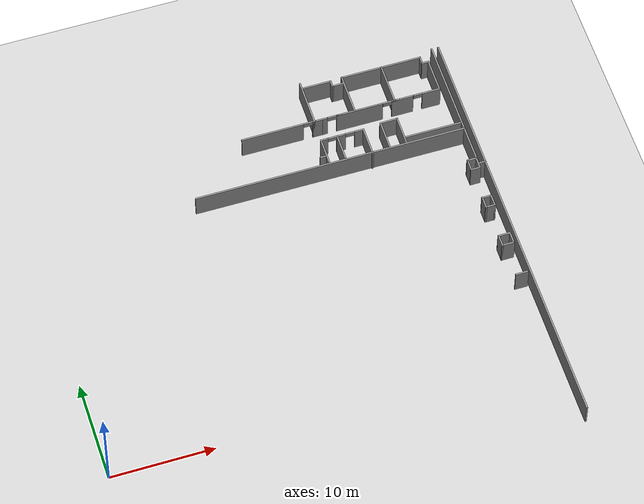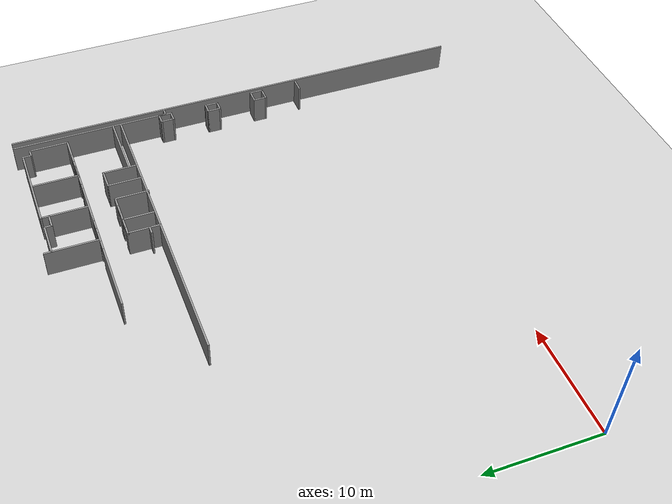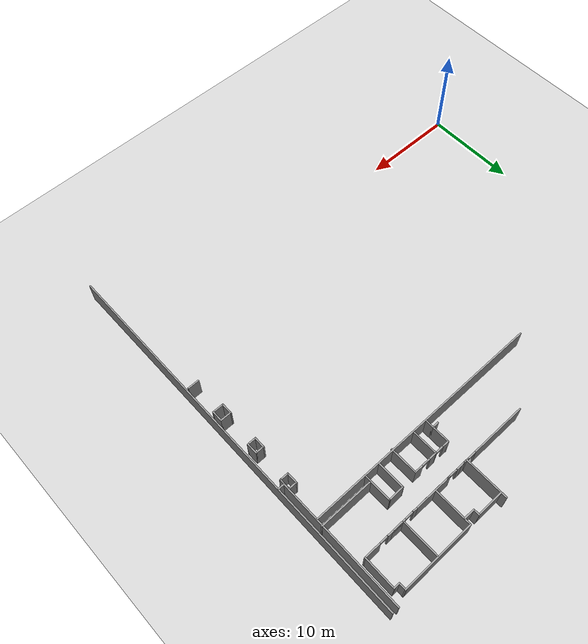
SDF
<sdf version="1.6">
 <world name="default">
  <model name="ground_plane">
   <static>1</static>
   <link name="link">
    <collision name="collision">
     <geometry><plane><normal>0 0 1</normal><size>100 100</size></plane></geometry>
     <surface>
      <contact><collide_bitmask>65535</collide_bitmask></contact>
      <friction><ode><mu>100</mu><mu2>50</mu2></ode></friction>
     </surface>
    </collision>
    <visual name="visual">
     <cast_shadows>0</cast_shadows>
     <geometry><plane><normal>0 0 1</normal><size>100 100</size></plane></geometry>
     <material>
      <script><uri>file://media/materials/scripts/gazebo.material</uri><name>Gazebo/Grey</name></script>
     </material>
    </visual>
   </link>
  </model>
  <model name="Tsudanuma_2-3-with_door">
   <pose>11.7222 12.8329 0 0 -0 0</pose>
   <link name="Wall_11">
    <collision name="Wall_11_Collision">
     <geometry><box><size>42 0.15 2.5</size></box></geometry>
     <pose>0 0 1.25 0 -0 0</pose>
    </collision>
    <visual name="Wall_11_Visual">
     <pose>0 0 1.25 0 -0 0</pose>
     <geometry><box><size>42 0.15 2.5</size></box></geometry>
     <material>
      <script><uri>file://media/materials/scripts/gazebo.material</uri><name>Gazebo/Grey</name></script>
      <ambient>1 1 1 1</ambient>
     </material>
     <meta><layer>0</layer></meta>
    </visual>
    <pose>30.8779 0.735038 0 0 -0 1.5708</pose>
   </link>
   <link name="Wall_241">
    <collision name="Wall_241_Collision">
     <geometry><box><size>0.75 0.15 2.5</size></box></geometry>
     <pose>0 0 1.25 0 -0 0</pose>
    </collision>
    <visual name="Wall_241_Visual">
     <pose>0 0 1.25 0 -0 0</pose>
     <geometry><box><size>0.75 0.15 2.5</size></box></geometry>
     <material>
      <script><uri>file://media/materials/scripts/gazebo.material</uri><name>Gazebo/Grey</name></script>
      <ambient>1 1 1 1</ambient>
     </material>
     <meta><layer>0</layer></meta>
    </visual>
    <pose>16.5881 12.9209 0 0 -0 0</pose>
   </link>
   <link name="Wall_242">
    <collision name="Wall_242_Collision">
     <geometry><box><size>2 0.15 2.5</size></box></geometry>
     <pose>0 0 1.25 0 -0 0</pose>
    </collision>
    <visual name="Wall_242_Visual">
     <pose>0 0 1.25 0 -0 0</pose>
     <geometry><box><size>2 0.15 2.5</size></box></geometry>
     <material>
      <script><uri>file://media/materials/scripts/gazebo.material</uri><name>Gazebo/Grey</name></script>
      <ambient>1 1 1 1</ambient>
     </material>
     <meta><layer>0</layer></meta>
    </visual>
    <pose>16.8881 13.8459 0 0 -0 1.5708</pose>
   </link>
   <link name="Wall_243">
    <pose>17.6881 14.7709 0 0 -0 0</pose>
    <visual name="Wall_243_Visual_0">
     <pose>-0.487249 0 1.25 0 -0 0</pose>
     <geometry><box><size>0.775502 0.15 2.5</size></box></geometry>
     <material>
      <script><uri>file://media/materials/scripts/gazebo.material</uri><name>Gazebo/Grey</name></script>
      <ambient>1 1 1 1</ambient>
     </material>
     <meta><layer>0</layer></meta>
    </visual>
    <collision name="Wall_243_Collision_0">
     <geometry><box><size>0.775502 0.15 2.5</size></box></geometry>
     <pose>-0.487249 0 1.25 0 -0 0</pose>
    </collision>
    <visual name="Wall_243_Visual_1">
     <pose>0.837751 0 1.25 0 -0 0</pose>
     <geometry><box><size>0.074498 0.15 2.5</size></box></geometry>
     <material>
      <script><uri>file://media/materials/scripts/gazebo.material</uri><name>Gazebo/Grey</name></script>
      <ambient>1 1 1 1</ambient>
     </material>
     <meta><layer>0</layer></meta>
    </visual>
    <collision name="Wall_243_Collision_1">
     <geometry><box><size>0.074498 0.15 2.5</size></box></geometry>
     <pose>0.837751 0 1.25 0 -0 0</pose>
    </collision>
    <visual name="Wall_243_Visual_2">
     <pose>0.350502 0 2.25 0 -0 0</pose>
     <geometry><box><size>0.9 0.15 0.5</size></box></geometry>
     <material>
      <script><uri>file://media/materials/scripts/gazebo.material</uri><name>Gazebo/Grey</name></script>
      <ambient>1 1 1 1</ambient>
     </material>
     <meta><layer>0</layer></meta>
    </visual>
    <collision name="Wall_243_Collision_2">
     <geometry><box><size>0.9 0.15 0.5</size></box></geometry>
     <pose>0.350502 0 2.25 0 -0 0</pose>
    </collision>
   </link>
   <link name="Wall_244">
    <collision name="Wall_244_Collision">
     <geometry><box><size>2.75 0.15 2.5</size></box></geometry>
     <pose>0 0 1.25 0 -0 0</pose>
    </collision>
    <visual name="Wall_244_Visual">
     <pose>0 0 1.25 0 -0 0</pose>
     <geometry><box><size>2.75 0.15 2.5</size></box></geometry>
     <material>
      <script><uri>file://media/materials/scripts/gazebo.material</uri><name>Gazebo/Grey</name></script>
      <ambient>1 1 1 1</ambient>
     </material>
     <meta><layer>0</layer></meta>
    </visual>
    <pose>18.4881 13.4709 0 0 -0 -1.5708</pose>
   </link>
   <link name="Wall_246">
    <collision name="Wall_246_Collision">
     <geometry><box><size>1 0.15 2.5</size></box></geometry>
     <pose>0 0 1.25 0 -0 0</pose>
    </collision>
    <visual name="Wall_246_Visual">
     <pose>0 0 1.25 0 -0 0</pose>
     <geometry><box><size>1 0.15 2.5</size></box></geometry>
     <material>
      <script><uri>file://media/materials/scripts/gazebo.material</uri><name>Gazebo/Grey</name></script>
      <ambient>1 1 1 1</ambient>
     </material>
     <meta><layer>0</layer></meta>
    </visual>
    <pose>16.8881 12.4959 0 0 -0 -1.5708</pose>
   </link>
   <link name="Wall_248">
    <pose>19.7881 14.7709 0 0 -0 0</pose>
    <visual name="Wall_248_Visual_0">
     <pose>-0.931607 0 1.25 0 -0 0</pose>
     <geometry><box><size>0.886786 0.15 2.5</size></box></geometry>
     <material>
      <script><uri>file://media/materials/scripts/gazebo.material</uri><name>Gazebo/Grey</name></script>
      <ambient>1 1 1 1</ambient>
     </material>
     <meta><layer>0</layer></meta>
    </visual>
    <collision name="Wall_248_Collision_0">
     <geometry><box><size>0.886786 0.15 2.5</size></box></geometry>
     <pose>-0.931607 0 1.25 0 -0 0</pose>
    </collision>
    <visual name="Wall_248_Visual_1">
     <pose>0.893393 0 1.25 0 -0 0</pose>
     <geometry><box><size>0.963214 0.15 2.5</size></box></geometry>
     <material>
      <script><uri>file://media/materials/scripts/gazebo.material</uri><name>Gazebo/Grey</name></script>
      <ambient>1 1 1 1</ambient>
     </material>
     <meta><layer>0</layer></meta>
    </visual>
    <collision name="Wall_248_Collision_1">
     <geometry><box><size>0.963214 0.15 2.5</size></box></geometry>
     <pose>0.893393 0 1.25 0 -0 0</pose>
    </collision>
    <visual name="Wall_248_Visual_2">
     <pose>-0.038214 0 2.25 0 -0 0</pose>
     <geometry><box><size>0.9 0.15 0.5</size></box></geometry>
     <material>
      <script><uri>file://media/materials/scripts/gazebo.material</uri><name>Gazebo/Grey</name></script>
      <ambient>1 1 1 1</ambient>
     </material>
     <meta><layer>0</layer></meta>
    </visual>
    <collision name="Wall_248_Collision_2">
     <geometry><box><size>0.9 0.15 0.5</size></box></geometry>
     <pose>-0.038214 0 2.25 0 -0 0</pose>
    </collision>
   </link>
   <link name="Wall_249">
    <collision name="Wall_249_Collision">
     <geometry><box><size>3 0.15 2.5</size></box></geometry>
     <pose>0 0 1.25 0 -0 0</pose>
    </collision>
    <visual name="Wall_249_Visual">
     <pose>0 0 1.25 0 -0 0</pose>
     <geometry><box><size>3 0.15 2.5</size></box></geometry>
     <material>
      <script><uri>file://media/materials/scripts/gazebo.material</uri><name>Gazebo/Grey</name></script>
      <ambient>1 1 1 1</ambient>
     </material>
     <meta><layer>0</layer></meta>
    </visual>
    <pose>21.0881 13.3459 0 0 -0 -1.5708</pose>
   </link>
   <link name="Wall_251">
    <collision name="Wall_251_Collision">
     <geometry><box><size>3 0.15 2.5</size></box></geometry>
     <pose>0 0 1.25 0 -0 0</pose>
    </collision>
    <visual name="Wall_251_Visual">
     <pose>0 0 1.25 0 -0 0</pose>
     <geometry><box><size>3 0.15 2.5</size></box></geometry>
     <material>
      <script><uri>file://media/materials/scripts/gazebo.material</uri><name>Gazebo/Grey</name></script>
      <ambient>1 1 1 1</ambient>
     </material>
     <meta><layer>0</layer></meta>
    </visual>
    <pose>22.8519 13.5353 0 0 -0 1.5708</pose>
   </link>
   <link name="Wall_252">
    <collision name="Wall_252_Collision">
     <geometry><box><size>1.78264 0.15 2.5</size></box></geometry>
     <pose>0 0 1.25 0 -0 0</pose>
    </collision>
    <visual name="Wall_252_Visual">
     <pose>0 0 1.25 0 -0 0</pose>
     <geometry><box><size>1.78264 0.15 2.5</size></box></geometry>
     <material>
      <script><uri>file://media/materials/scripts/gazebo.material</uri><name>Gazebo/Grey</name></script>
      <ambient>1 1 1 1</ambient>
     </material>
     <meta><layer>0</layer></meta>
    </visual>
    <pose>23.6682 14.9702 0 0 -0 0.01211</pose>
   </link>
   <link name="Wall_253">
    <collision name="Wall_253_Collision">
     <geometry><box><size>3 0.15 2.5</size></box></geometry>
     <pose>0 0 1.25 0 -0 0</pose>
    </collision>
    <visual name="Wall_253_Visual">
     <pose>0 0 1.25 0 -0 0</pose>
     <geometry><box><size>3 0.15 2.5</size></box></geometry>
     <material>
      <script><uri>file://media/materials/scripts/gazebo.material</uri><name>Gazebo/Grey</name></script>
      <ambient>1 1 1 1</ambient>
     </material>
     <meta><layer>0</layer></meta>
    </visual>
    <pose>24.5042 13.555 0 0 -0 -1.5708</pose>
   </link>
   <link name="Wall_256">
    <collision name="Wall_256_Collision">
     <geometry><box><size>5.75 0.15 2.5</size></box></geometry>
     <pose>0 0 1.25 0 -0 0</pose>
    </collision>
    <visual name="Wall_256_Visual">
     <pose>0 0 1.25 0 -0 0</pose>
     <geometry><box><size>5.75 0.15 2.5</size></box></geometry>
     <material>
      <script><uri>file://media/materials/scripts/gazebo.material</uri><name>Gazebo/Grey</name></script>
      <ambient>1 1 1 1</ambient>
     </material>
     <meta><layer>0</layer></meta>
    </visual>
    <pose>27.455 12.7232 0 0 -0 3.14159</pose>
   </link>
   <link name="Wall_258">
    <collision name="Wall_258_Collision">
     <geometry><box><size>14 0.15 2.5</size></box></geometry>
     <pose>0 0 1.25 0 -0 0</pose>
    </collision>
    <visual name="Wall_258_Visual">
     <pose>0 0 1.25 0 -0 0</pose>
     <geometry><box><size>14 0.15 2.5</size></box></geometry>
     <material>
      <script><uri>file://media/materials/scripts/gazebo.material</uri><name>Gazebo/Grey</name></script>
      <ambient>1 1 1 1</ambient>
     </material>
     <meta><layer>0</layer></meta>
    </visual>
    <pose>30.2131 14.7469 0 0 -0 -1.5708</pose>
   </link>
   <link name="Wall_260">
    <collision name="Wall_260_Collision">
     <geometry><box><size>0.75 0.15 2.5</size></box></geometry>
     <pose>0 0 1.25 0 -0 0</pose>
    </collision>
    <visual name="Wall_260_Visual">
     <pose>0 0 1.25 0 -0 0</pose>
     <geometry><box><size>0.75 0.15 2.5</size></box></geometry>
     <material>
      <script><uri>file://media/materials/scripts/gazebo.material</uri><name>Gazebo/Grey</name></script>
      <ambient>1 1 1 1</ambient>
     </material>
     <meta><layer>0</layer></meta>
    </visual>
    <pose>30.5131 7.82186 0 0 -0 0</pose>
   </link>
   <link name="Wall_262">
    <collision name="Wall_262_Collision">
     <geometry><box><size>3.5 0.15 2.5</size></box></geometry>
     <pose>0 0 1.25 0 -0 0</pose>
    </collision>
    <visual name="Wall_262_Visual">
     <pose>0 0 1.25 0 -0 0</pose>
     <geometry><box><size>3.5 0.15 2.5</size></box></geometry>
     <material>
      <script><uri>file://media/materials/scripts/gazebo.material</uri><name>Gazebo/Grey</name></script>
      <ambient>1 1 1 1</ambient>
     </material>
     <meta><layer>0</layer></meta>
    </visual>
    <pose>29.4356 18.7263 0 0 -0 -1.5708</pose>
   </link>
   <link name="Wall_263">
    <pose>19.6356 17.0513 0 0 -0 3.14159</pose>
    <visual name="Wall_263_Visual_0">
     <pose>-8.96632 0 1.25 0 -0 0</pose>
     <geometry><box><size>1.81737 0.15 2.5</size></box></geometry>
     <material>
      <script><uri>file://media/materials/scripts/gazebo.material</uri><name>Gazebo/Grey</name></script>
      <ambient>1 1 1 1</ambient>
     </material>
     <meta><layer>0</layer></meta>
    </visual>
    <collision name="Wall_263_Collision_0">
     <geometry><box><size>1.81737 0.15 2.5</size></box></geometry>
     <pose>-8.96632 0 1.25 0 -0 0</pose>
    </collision>
    <visual name="Wall_263_Visual_1">
     <pose>-6.08433 0 1.25 0 -0 0</pose>
     <geometry><box><size>2.14661 0.15 2.5</size></box></geometry>
     <material>
      <script><uri>file://media/materials/scripts/gazebo.material</uri><name>Gazebo/Grey</name></script>
      <ambient>1 1 1 1</ambient>
     </material>
     <meta><layer>0</layer></meta>
    </visual>
    <collision name="Wall_263_Collision_1">
     <geometry><box><size>2.14661 0.15 2.5</size></box></geometry>
     <pose>-6.08433 0 1.25 0 -0 0</pose>
    </collision>
    <visual name="Wall_263_Visual_2">
     <pose>-5.82829 0 1.25 0 -0 0</pose>
     <geometry><box><size>1.63452 0.15 2.5</size></box></geometry>
     <material>
      <script><uri>file://media/materials/scripts/gazebo.material</uri><name>Gazebo/Grey</name></script>
      <ambient>1 1 1 1</ambient>
     </material>
     <meta><layer>0</layer></meta>
    </visual>
    <collision name="Wall_263_Collision_2">
     <geometry><box><size>1.63452 0.15 2.5</size></box></geometry>
     <pose>-5.82829 0 1.25 0 -0 0</pose>
    </collision>
    <visual name="Wall_263_Visual_3">
     <pose>-1.80612 0 1.25 0 -0 0</pose>
     <geometry><box><size>4.60982 0.15 2.5</size></box></geometry>
     <material>
      <script><uri>file://media/materials/scripts/gazebo.material</uri><name>Gazebo/Grey</name></script>
      <ambient>1 1 1 1</ambient>
     </material>
     <meta><layer>0</layer></meta>
    </visual>
    <collision name="Wall_263_Collision_3">
     <geometry><box><size>4.60982 0.15 2.5</size></box></geometry>
     <pose>-1.80612 0 1.25 0 -0 0</pose>
    </collision>
    <visual name="Wall_263_Visual_4">
     <pose>-1.56952 0 1.25 0 -0 0</pose>
     <geometry><box><size>4.13662 0.15 2.5</size></box></geometry>
     <material>
      <script><uri>file://media/materials/scripts/gazebo.material</uri><name>Gazebo/Grey</name></script>
      <ambient>1 1 1 1</ambient>
     </material>
     <meta><layer>0</layer></meta>
    </visual>
    <collision name="Wall_263_Collision_4">
     <geometry><box><size>4.13662 0.15 2.5</size></box></geometry>
     <pose>-1.56952 0 1.25 0 -0 0</pose>
    </collision>
    <visual name="Wall_263_Visual_5">
     <pose>2.1415 0 1.25 0 -0 0</pose>
     <geometry><box><size>1.48543 0.15 2.5</size></box></geometry>
     <material>
      <script><uri>file://media/materials/scripts/gazebo.material</uri><name>Gazebo/Grey</name></script>
      <ambient>1 1 1 1</ambient>
     </material>
     <meta><layer>0</layer></meta>
    </visual>
    <collision name="Wall_263_Collision_5">
     <geometry><box><size>1.48543 0.15 2.5</size></box></geometry>
     <pose>2.1415 0 1.25 0 -0 0</pose>
    </collision>
    <visual name="Wall_263_Visual_6">
     <pose>2.39107 0 1.25 0 -0 0</pose>
     <geometry><box><size>0.986302 0.15 2.5</size></box></geometry>
     <material>
      <script><uri>file://media/materials/scripts/gazebo.material</uri><name>Gazebo/Grey</name></script>
      <ambient>1 1 1 1</ambient>
     </material>
     <meta><layer>0</layer></meta>
    </visual>
    <collision name="Wall_263_Collision_6">
     <geometry><box><size>0.986302 0.15 2.5</size></box></geometry>
     <pose>2.39107 0 1.25 0 -0 0</pose>
    </collision>
    <visual name="Wall_263_Visual_7">
     <pose>6.82961 0 1.25 0 -0 0</pose>
     <geometry><box><size>6.09078 0.15 2.5</size></box></geometry>
     <material>
      <script><uri>file://media/materials/scripts/gazebo.material</uri><name>Gazebo/Grey</name></script>
      <ambient>1 1 1 1</ambient>
     </material>
     <meta><layer>0</layer></meta>
    </visual>
    <collision name="Wall_263_Collision_7">
     <geometry><box><size>6.09078 0.15 2.5</size></box></geometry>
     <pose>6.82961 0 1.25 0 -0 0</pose>
    </collision>
    <visual name="Wall_263_Visual_8">
     <pose>-7.62009 0 2.25 0 -0 0</pose>
     <geometry><box><size>0.87509 0.15 0.5</size></box></geometry>
     <material>
      <script><uri>file://media/materials/scripts/gazebo.material</uri><name>Gazebo/Grey</name></script>
      <ambient>1 1 1 1</ambient>
     </material>
     <meta><layer>0</layer></meta>
    </visual>
    <collision name="Wall_263_Collision_8">
     <geometry><box><size>0.87509 0.15 0.5</size></box></geometry>
     <pose>-7.62009 0 2.25 0 -0 0</pose>
    </collision>
    <visual name="Wall_263_Visual_9">
     <pose>-4.567 0 2.25 0 -0 0</pose>
     <geometry><box><size>0.888054 0.15 0.5</size></box></geometry>
     <material>
      <script><uri>file://media/materials/scripts/gazebo.material</uri><name>Gazebo/Grey</name></script>
      <ambient>1 1 1 1</ambient>
     </material>
     <meta><layer>0</layer></meta>
    </visual>
    <collision name="Wall_263_Collision_9">
     <geometry><box><size>0.888054 0.15 0.5</size></box></geometry>
     <pose>-4.567 0 2.25 0 -0 0</pose>
    </collision>
    <visual name="Wall_263_Visual_10">
     <pose>-4.567 0 2.25 0 -0 0</pose>
     <geometry><box><size>0.888054 0.15 0.5</size></box></geometry>
     <material>
      <script><uri>file://media/materials/scripts/gazebo.material</uri><name>Gazebo/Grey</name></script>
      <ambient>1 1 1 1</ambient>
     </material>
     <meta><layer>0</layer></meta>
    </visual>
    <collision name="Wall_263_Collision_10">
     <geometry><box><size>0.888054 0.15 0.5</size></box></geometry>
     <pose>-4.567 0 2.25 0 -0 0</pose>
    </collision>
    <visual name="Wall_263_Visual_11">
     <pose>0.942818 0 2.25 0 -0 0</pose>
     <geometry><box><size>0.888053 0.15 0.5</size></box></geometry>
     <material>
      <script><uri>file://media/materials/scripts/gazebo.material</uri><name>Gazebo/Grey</name></script>
      <ambient>1 1 1 1</ambient>
     </material>
     <meta><layer>0</layer></meta>
    </visual>
    <collision name="Wall_263_Collision_11">
     <geometry><box><size>0.888053 0.15 0.5</size></box></geometry>
     <pose>0.942818 0 2.25 0 -0 0</pose>
    </collision>
    <visual name="Wall_263_Visual_12">
     <pose>0.942818 0 2.25 0 -0 0</pose>
     <geometry><box><size>0.888053 0.15 0.5</size></box></geometry>
     <material>
      <script><uri>file://media/materials/scripts/gazebo.material</uri><name>Gazebo/Grey</name></script>
      <ambient>1 1 1 1</ambient>
     </material>
     <meta><layer>0</layer></meta>
    </visual>
    <collision name="Wall_263_Collision_12">
     <geometry><box><size>0.888053 0.15 0.5</size></box></geometry>
     <pose>0.942818 0 2.25 0 -0 0</pose>
    </collision>
    <visual name="Wall_263_Visual_13">
     <pose>3.33422 0 2.25 0 -0 0</pose>
     <geometry><box><size>0.9 0.15 0.5</size></box></geometry>
     <material>
      <script><uri>file://media/materials/scripts/gazebo.material</uri><name>Gazebo/Grey</name></script>
      <ambient>1 1 1 1</ambient>
     </material>
     <meta><layer>0</layer></meta>
    </visual>
    <collision name="Wall_263_Collision_13">
     <geometry><box><size>0.9 0.15 0.5</size></box></geometry>
     <pose>3.33422 0 2.25 0 -0 0</pose>
    </collision>
    <visual name="Wall_263_Visual_14">
     <pose>3.33422 0 2.25 0 -0 0</pose>
     <geometry><box><size>0.9 0.15 0.5</size></box></geometry>
     <material>
      <script><uri>file://media/materials/scripts/gazebo.material</uri><name>Gazebo/Grey</name></script>
      <ambient>1 1 1 1</ambient>
     </material>
     <meta><layer>0</layer></meta>
    </visual>
    <collision name="Wall_263_Collision_14">
     <geometry><box><size>0.9 0.15 0.5</size></box></geometry>
     <pose>3.33422 0 2.25 0 -0 0</pose>
    </collision>
   </link>
   <link name="Wall_268">
    <collision name="Wall_268_Collision">
     <geometry><box><size>0.75 0.15 2.5</size></box></geometry>
     <pose>0 0 1.25 0 -0 0</pose>
    </collision>
    <visual name="Wall_268_Visual">
     <pose>0 0 1.25 0 -0 0</pose>
     <geometry><box><size>0.75 0.15 2.5</size></box></geometry>
     <material>
      <script><uri>file://media/materials/scripts/gazebo.material</uri><name>Gazebo/Grey</name></script>
      <ambient>1 1 1 1</ambient>
     </material>
     <meta><layer>0</layer></meta>
    </visual>
    <pose>28.8218 20.8061 0 0 -0 -1.5708</pose>
   </link>
   <link name="Wall_271">
    <collision name="Wall_271_Collision">
     <geometry><box><size>0.75 0.15 2.5</size></box></geometry>
     <pose>0 0 1.25 0 -0 0</pose>
    </collision>
    <visual name="Wall_271_Visual">
     <pose>0 0 1.25 0 -0 0</pose>
     <geometry><box><size>0.75 0.15 2.5</size></box></geometry>
     <material>
      <script><uri>file://media/materials/scripts/gazebo.material</uri><name>Gazebo/Grey</name></script>
      <ambient>1 1 1 1</ambient>
     </material>
     <meta><layer>0</layer></meta>
    </visual>
    <pose>29.1356 20.4013 0 0 -0 3.14159</pose>
   </link>
   <link name="Wall_273">
    <collision name="Wall_273_Collision">
     <geometry><box><size>8 0.15 2.5</size></box></geometry>
     <pose>0 0 1.25 0 -0 0</pose>
    </collision>
    <visual name="Wall_273_Visual">
     <pose>0 0 1.25 0 -0 0</pose>
     <geometry><box><size>8 0.15 2.5</size></box></geometry>
     <material>
      <script><uri>file://media/materials/scripts/gazebo.material</uri><name>Gazebo/Grey</name></script>
      <ambient>1 1 1 1</ambient>
     </material>
     <meta><layer>0</layer></meta>
    </visual>
    <pose>24.8968 21.1061 0 0 -0 3.14159</pose>
   </link>
   <link name="Wall_274">
    <collision name="Wall_274_Collision">
     <geometry><box><size>4.1 0.15 2.5</size></box></geometry>
     <pose>0 0 1.25 0 -0 0</pose>
    </collision>
    <visual name="Wall_274_Visual">
     <pose>0 0 1.25 0 -0 0</pose>
     <geometry><box><size>4.1 0.15 2.5</size></box></geometry>
     <material>
      <script><uri>file://media/materials/scripts/gazebo.material</uri><name>Gazebo/Grey</name></script>
      <ambient>1 1 1 1</ambient>
     </material>
     <meta><layer>0</layer></meta>
    </visual>
    <pose>20.9718 19.1311 0 0 -0 -1.5708</pose>
   </link>
   <link name="Wall_276">
    <collision name="Wall_276_Collision">
     <geometry><box><size>4.1 0.15 2.5</size></box></geometry>
     <pose>0 0 1.25 0 -0 0</pose>
    </collision>
    <visual name="Wall_276_Visual">
     <pose>0 0 1.25 0 -0 0</pose>
     <geometry><box><size>4.1 0.15 2.5</size></box></geometry>
     <material>
      <script><uri>file://media/materials/scripts/gazebo.material</uri><name>Gazebo/Grey</name></script>
      <ambient>1 1 1 1</ambient>
     </material>
     <meta><layer>0</layer></meta>
    </visual>
    <pose>24.9422 19.0655 0 0 -0 1.5708</pose>
   </link>
   <link name="Wall_278">
    <collision name="Wall_278_Collision">
     <geometry><box><size>4.7 0.15 2.5</size></box></geometry>
     <pose>0 0 1.25 0 -0 0</pose>
    </collision>
    <visual name="Wall_278_Visual">
     <pose>0 0 1.25 0 -0 0</pose>
     <geometry><box><size>4.7 0.15 2.5</size></box></geometry>
     <material>
      <script><uri>file://media/materials/scripts/gazebo.material</uri><name>Gazebo/Grey</name></script>
      <ambient>1 1 1 1</ambient>
     </material>
     <meta><layer>0</layer></meta>
    </visual>
    <pose>16.9617 19.3542 0 0 -0 1.5708</pose>
   </link>
   <link name="Wall_280">
    <collision name="Wall_280_Collision">
     <geometry><box><size>3 0.15 2.5</size></box></geometry>
     <pose>0 0 1.25 0 -0 0</pose>
    </collision>
    <visual name="Wall_280_Visual">
     <pose>0 0 1.25 0 -0 0</pose>
     <geometry><box><size>3 0.15 2.5</size></box></geometry>
     <material>
      <script><uri>file://media/materials/scripts/gazebo.material</uri><name>Gazebo/Grey</name></script>
      <ambient>1 1 1 1</ambient>
     </material>
     <meta><layer>0</layer></meta>
    </visual>
    <pose>18.398 21.0242 0 0 -0 0</pose>
   </link>
   <link name="Wall_281">
    <collision name="Wall_281_Collision">
     <geometry><box><size>0.75 0.15 2.5</size></box></geometry>
     <pose>0 0 1.25 0 -0 0</pose>
    </collision>
    <visual name="Wall_281_Visual">
     <pose>0 0 1.25 0 -0 0</pose>
     <geometry><box><size>0.75 0.15 2.5</size></box></geometry>
     <material>
      <script><uri>file://media/materials/scripts/gazebo.material</uri><name>Gazebo/Grey</name></script>
      <ambient>1 1 1 1</ambient>
     </material>
     <meta><layer>0</layer></meta>
    </visual>
    <pose>19.823 20.7242 0 0 -0 -1.5708</pose>
   </link>
   <link name="Wall_282">
    <collision name="Wall_282_Collision">
     <geometry><box><size>1.25 0.15 2.5</size></box></geometry>
     <pose>0 0 1.25 0 -0 0</pose>
    </collision>
    <visual name="Wall_282_Visual">
     <pose>0 0 1.25 0 -0 0</pose>
     <geometry><box><size>1.25 0.15 2.5</size></box></geometry>
     <material>
      <script><uri>file://media/materials/scripts/gazebo.material</uri><name>Gazebo/Grey</name></script>
      <ambient>1 1 1 1</ambient>
     </material>
     <meta><layer>0</layer></meta>
    </visual>
    <pose>20.373 20.4242 0 0 -0 0</pose>
   </link>
   <link name="Wall_367">
    <collision name="Wall_367_Collision">
     <geometry><box><size>26.5 0.15 2.5</size></box></geometry>
     <pose>0 0 1.25 0 -0 0</pose>
    </collision>
    <visual name="Wall_367_Visual">
     <pose>0 0 1.25 0 -0 0</pose>
     <geometry><box><size>26.5 0.15 2.5</size></box></geometry>
     <material>
      <script><uri>file://media/materials/scripts/gazebo.material</uri><name>Gazebo/Grey</name></script>
      <ambient>1 1 1 1</ambient>
     </material>
     <meta><layer>0</layer></meta>
    </visual>
    <pose>16.9664 12.0101 0 0 -0 0</pose>
   </link>
   <link name="Wall_369">
    <collision name="Wall_369_Collision">
     <geometry><box><size>1 0.15 2.5</size></box></geometry>
     <pose>0 0 1.25 0 -0 0</pose>
    </collision>
    <visual name="Wall_369_Visual">
     <pose>0 0 1.25 0 -0 0</pose>
     <geometry><box><size>1 0.15 2.5</size></box></geometry>
     <material>
      <script><uri>file://media/materials/scripts/gazebo.material</uri><name>Gazebo/Grey</name></script>
      <ambient>1 1 1 1</ambient>
     </material>
     <meta><layer>0</layer></meta>
    </visual>
    <pose>29.7508 8.42555 0 0 -0 3.14159</pose>
   </link>
   <link name="Wall_370">
    <collision name="Wall_370_Collision">
     <geometry><box><size>1.25 0.15 2.5</size></box></geometry>
     <pose>0 0 1.25 0 -0 0</pose>
    </collision>
    <visual name="Wall_370_Visual">
     <pose>0 0 1.25 0 -0 0</pose>
     <geometry><box><size>1.25 0.15 2.5</size></box></geometry>
     <material>
      <script><uri>file://media/materials/scripts/gazebo.material</uri><name>Gazebo/Grey</name></script>
      <ambient>1 1 1 1</ambient>
     </material>
     <meta><layer>0</layer></meta>
    </visual>
    <pose>29.3258 7.87556 0 0 -0 -1.5708</pose>
   </link>
   <link name="Wall_371">
    <collision name="Wall_371_Collision">
     <geometry><box><size>1 0.15 2.5</size></box></geometry>
     <pose>0 0 1.25 0 -0 0</pose>
    </collision>
    <visual name="Wall_371_Visual">
     <pose>0 0 1.25 0 -0 0</pose>
     <geometry><box><size>1 0.15 2.5</size></box></geometry>
     <material>
      <script><uri>file://media/materials/scripts/gazebo.material</uri><name>Gazebo/Grey</name></script>
      <ambient>1 1 1 1</ambient>
     </material>
     <meta><layer>0</layer></meta>
    </visual>
    <pose>29.7508 7.32555 0 0 -0 0</pose>
   </link>
   <link name="Wall_372">
    <collision name="Wall_372_Collision">
     <geometry><box><size>1.25 0.15 2.5</size></box></geometry>
     <pose>0 0 1.25 0 -0 0</pose>
    </collision>
    <visual name="Wall_372_Visual">
     <pose>0 0 1.25 0 -0 0</pose>
     <geometry><box><size>1.25 0.15 2.5</size></box></geometry>
     <material>
      <script><uri>file://media/materials/scripts/gazebo.material</uri><name>Gazebo/Grey</name></script>
      <ambient>1 1 1 1</ambient>
     </material>
     <meta><layer>0</layer></meta>
    </visual>
    <pose>30.1758 7.87556 0 0 -0 1.5708</pose>
   </link>
   <link name="Wall_374">
    <collision name="Wall_374_Collision">
     <geometry><box><size>1 0.15 2.5</size></box></geometry>
     <pose>0 0 1.25 0 -0 0</pose>
    </collision>
    <visual name="Wall_374_Visual">
     <pose>0 0 1.25 0 -0 0</pose>
     <geometry><box><size>1 0.15 2.5</size></box></geometry>
     <material>
      <script><uri>file://media/materials/scripts/gazebo.material</uri><name>Gazebo/Grey</name></script>
      <ambient>1 1 1 1</ambient>
     </material>
     <meta><layer>0</layer></meta>
    </visual>
    <pose>29.7061 4.03145 0 0 -0 0</pose>
   </link>
   <link name="Wall_375">
    <collision name="Wall_375_Collision">
     <geometry><box><size>1.25 0.15 2.5</size></box></geometry>
     <pose>0 0 1.25 0 -0 0</pose>
    </collision>
    <visual name="Wall_375_Visual">
     <pose>0 0 1.25 0 -0 0</pose>
     <geometry><box><size>1.25 0.15 2.5</size></box></geometry>
     <material>
      <script><uri>file://media/materials/scripts/gazebo.material</uri><name>Gazebo/Grey</name></script>
      <ambient>1 1 1 1</ambient>
     </material>
     <meta><layer>0</layer></meta>
    </visual>
    <pose>30.1311 3.48145 0 0 -0 -1.5708</pose>
   </link>
   <link name="Wall_376">
    <collision name="Wall_376_Collision">
     <geometry><box><size>1 0.15 2.5</size></box></geometry>
     <pose>0 0 1.25 0 -0 0</pose>
    </collision>
    <visual name="Wall_376_Visual">
     <pose>0 0 1.25 0 -0 0</pose>
     <geometry><box><size>1 0.15 2.5</size></box></geometry>
     <material>
      <script><uri>file://media/materials/scripts/gazebo.material</uri><name>Gazebo/Grey</name></script>
      <ambient>1 1 1 1</ambient>
     </material>
     <meta><layer>0</layer></meta>
    </visual>
    <pose>29.7061 2.93145 0 0 -0 3.14159</pose>
   </link>
   <link name="Wall_377">
    <collision name="Wall_377_Collision">
     <geometry><box><size>1.25 0.15 2.5</size></box></geometry>
     <pose>0 0 1.25 0 -0 0</pose>
    </collision>
    <visual name="Wall_377_Visual">
     <pose>0 0 1.25 0 -0 0</pose>
     <geometry><box><size>1.25 0.15 2.5</size></box></geometry>
     <material>
      <script><uri>file://media/materials/scripts/gazebo.material</uri><name>Gazebo/Grey</name></script>
      <ambient>1 1 1 1</ambient>
     </material>
     <meta><layer>0</layer></meta>
    </visual>
    <pose>29.2811 3.48145 0 0 -0 1.5708</pose>
   </link>
   <link name="Wall_379">
    <collision name="Wall_379_Collision">
     <geometry><box><size>1.25 0.15 2.5</size></box></geometry>
     <pose>0 0 1.25 0 -0 0</pose>
    </collision>
    <visual name="Wall_379_Visual">
     <pose>0 0 1.25 0 -0 0</pose>
     <geometry><box><size>1.25 0.15 2.5</size></box></geometry>
     <material>
      <script><uri>file://media/materials/scripts/gazebo.material</uri><name>Gazebo/Grey</name></script>
      <ambient>1 1 1 1</ambient>
     </material>
     <meta><layer>0</layer></meta>
    </visual>
    <pose>29.8907 -0.442181 0 0 -0 0</pose>
   </link>
   <link name="Wall_380">
    <collision name="Wall_380_Collision">
     <geometry><box><size>1.25 0.15 2.5</size></box></geometry>
     <pose>0 0 1.25 0 -0 0</pose>
    </collision>
    <visual name="Wall_380_Visual">
     <pose>0 0 1.25 0 -0 0</pose>
     <geometry><box><size>1.25 0.15 2.5</size></box></geometry>
     <material>
      <script><uri>file://media/materials/scripts/gazebo.material</uri><name>Gazebo/Grey</name></script>
      <ambient>1 1 1 1</ambient>
     </material>
     <meta><layer>0</layer></meta>
    </visual>
    <pose>30.4407 -0.992181 0 0 -0 -1.5708</pose>
   </link>
   <link name="Wall_381">
    <collision name="Wall_381_Collision">
     <geometry><box><size>1.25 0.15 2.5</size></box></geometry>
     <pose>0 0 1.25 0 -0 0</pose>
    </collision>
    <visual name="Wall_381_Visual">
     <pose>0 0 1.25 0 -0 0</pose>
     <geometry><box><size>1.25 0.15 2.5</size></box></geometry>
     <material>
      <script><uri>file://media/materials/scripts/gazebo.material</uri><name>Gazebo/Grey</name></script>
      <ambient>1 1 1 1</ambient>
     </material>
     <meta><layer>0</layer></meta>
    </visual>
    <pose>29.8907 -1.54218 0 0 -0 3.14159</pose>
   </link>
   <link name="Wall_382">
    <collision name="Wall_382_Collision">
     <geometry><box><size>1.25 0.15 2.5</size></box></geometry>
     <pose>0 0 1.25 0 -0 0</pose>
    </collision>
    <visual name="Wall_382_Visual">
     <pose>0 0 1.25 0 -0 0</pose>
     <geometry><box><size>1.25 0.15 2.5</size></box></geometry>
     <material>
      <script><uri>file://media/materials/scripts/gazebo.material</uri><name>Gazebo/Grey</name></script>
      <ambient>1 1 1 1</ambient>
     </material>
     <meta><layer>0</layer></meta>
    </visual>
    <pose>29.3407 -0.992181 0 0 -0 1.5708</pose>
   </link>
   <link name="Wall_384">
    <collision name="Wall_384_Collision">
     <geometry><box><size>1.25 0.15 2.5</size></box></geometry>
     <pose>0 0 1.25 0 -0 0</pose>
    </collision>
    <visual name="Wall_384_Visual">
     <pose>0 0 1.25 0 -0 0</pose>
     <geometry><box><size>1.25 0.15 2.5</size></box></geometry>
     <material>
      <script><uri>file://media/materials/scripts/gazebo.material</uri><name>Gazebo/Grey</name></script>
      <ambient>1 1 1 1</ambient>
     </material>
     <meta><layer>0</layer></meta>
    </visual>
    <pose>30.0498 -4.9357 0 0 -0 0</pose>
   </link>
   <static>1</static>
  </model>
 </world>
</sdf>
